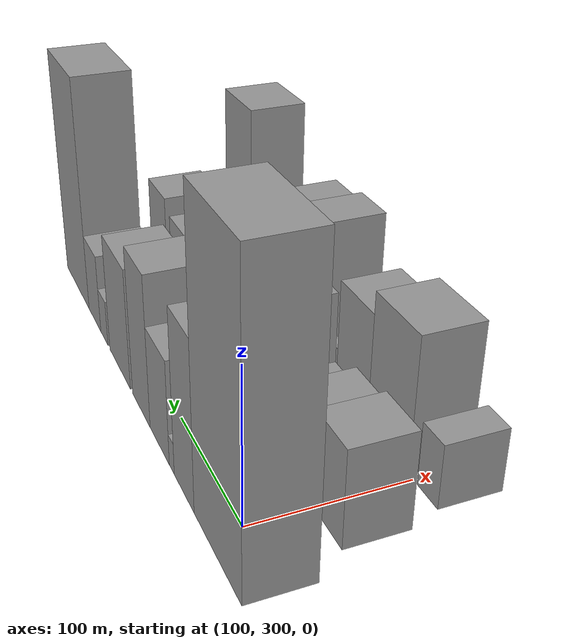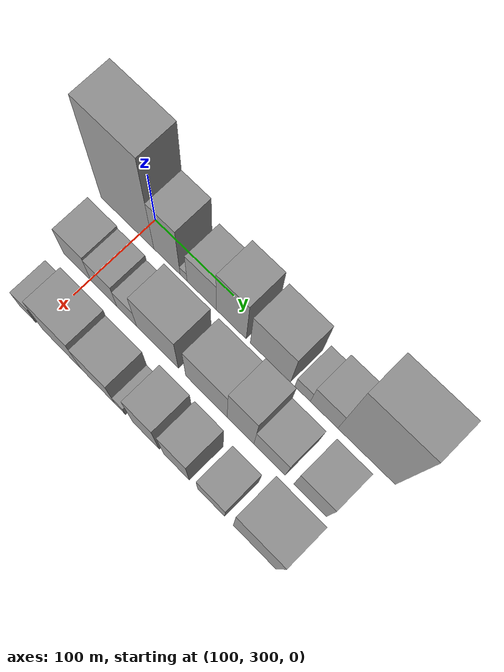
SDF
<sdf version="1.6">
 <world name="default">
  <model name="building_26">
   <static>1</static>
   <pose>100.0000 284.4919 0 0.000000 0.000000 0.000000</pose>
   <link name="link">
    <pose>0 0 96.00 0 0 0</pose>
    <collision name="collision"><geometry><box><size>40.0000 68.7816 192.0000</size></box></geometry></collision>
    <visual name="visual">
     <cast_shadows>0</cast_shadows>
     <geometry><box><size>40.0000 68.7816 192.0000</size></box></geometry>
     <material>
      <script>
       <uri>model://grey_wall/materials/scripts</uri>
       <uri>model://grey_wall/materials/textures</uri>
       <name>vrc/grey_wall</name>
      </script>
     </material>
    </visual>
   </link>
  </model>
  <model name="building_27">
   <static>1</static>
   <pose>100.0000 335.6351 0 0.000000 0.000000 0.000000</pose>
   <link name="link">
    <pose>0 0 54.00 0 0 0</pose>
    <collision name="collision"><geometry><box><size>40.0000 33.5049 108.0000</size></box></geometry></collision>
    <visual name="visual">
     <cast_shadows>0</cast_shadows>
     <geometry><box><size>40.0000 33.5049 108.0000</size></box></geometry>
     <material>
      <script>
       <uri>model://grey_wall/materials/scripts</uri>
       <uri>model://grey_wall/materials/textures</uri>
       <name>vrc/grey_wall</name>
      </script>
     </material>
    </visual>
   </link>
  </model>
  <model name="building_28">
   <static>1</static>
   <pose>100.0000 356.8194 0 0.000000 0.000000 0.000000</pose>
   <link name="link">
    <pose>0 0 10.50 0 0 0</pose>
    <collision name="collision"><geometry><box><size>40.0000 8.8637 21.0000</size></box></geometry></collision>
    <visual name="visual">
     <cast_shadows>0</cast_shadows>
     <geometry><box><size>40.0000 8.8637 21.0000</size></box></geometry>
     <material>
      <script>
       <uri>model://grey_wall/materials/scripts</uri>
       <uri>model://grey_wall/materials/textures</uri>
       <name>vrc/grey_wall</name>
      </script>
     </material>
    </visual>
   </link>
  </model>
  <model name="building_29">
   <static>1</static>
   <pose>100.0000 379.5728 0 0.000000 0.000000 0.000000</pose>
   <link name="link">
    <pose>0 0 34.50 0 0 0</pose>
    <collision name="collision"><geometry><box><size>40.0000 36.6431 69.0000</size></box></geometry></collision>
    <visual name="visual">
     <cast_shadows>0</cast_shadows>
     <geometry><box><size>40.0000 36.6431 69.0000</size></box></geometry>
     <material>
      <script>
       <uri>model://grey_wall/materials/scripts</uri>
       <uri>model://grey_wall/materials/textures</uri>
       <name>vrc/grey_wall</name>
      </script>
     </material>
    </visual>
   </link>
  </model>
  <model name="building_30">
   <static>1</static>
   <pose>100.0000 416.3446 0 0.000000 0.000000 0.000000</pose>
   <link name="link">
    <pose>0 0 51.00 0 0 0</pose>
    <collision name="collision"><geometry><box><size>40.0000 36.9004 102.0000</size></box></geometry></collision>
    <visual name="visual">
     <cast_shadows>0</cast_shadows>
     <geometry><box><size>40.0000 36.9004 102.0000</size></box></geometry>
     <material>
      <script>
       <uri>model://grey_wall/materials/scripts</uri>
       <uri>model://grey_wall/materials/textures</uri>
       <name>vrc/grey_wall</name>
      </script>
     </material>
    </visual>
   </link>
  </model>
  <model name="building_31">
   <static>1</static>
   <pose>100.0000 464.2166 0 0.000000 0.000000 0.000000</pose>
   <link name="link">
    <pose>0 0 42.00 0 0 0</pose>
    <collision name="collision"><geometry><box><size>40.0000 48.8437 84.0000</size></box></geometry></collision>
    <visual name="visual">
     <cast_shadows>0</cast_shadows>
     <geometry><box><size>40.0000 48.8437 84.0000</size></box></geometry>
     <material>
      <script>
       <uri>model://grey_wall/materials/scripts</uri>
       <uri>model://grey_wall/materials/textures</uri>
       <name>vrc/grey_wall</name>
      </script>
     </material>
    </visual>
   </link>
  </model>
  <model name="building_32">
   <static>1</static>
   <pose>100.0000 502.9277 0 0.000000 0.000000 0.000000</pose>
   <link name="link">
    <pose>0 0 16.50 0 0 0</pose>
    <collision name="collision"><geometry><box><size>40.0000 18.5784 33.0000</size></box></geometry></collision>
    <visual name="visual">
     <cast_shadows>0</cast_shadows>
     <geometry><box><size>40.0000 18.5784 33.0000</size></box></geometry>
     <material>
      <script>
       <uri>model://grey_wall/materials/scripts</uri>
       <uri>model://grey_wall/materials/textures</uri>
       <name>vrc/grey_wall</name>
      </script>
     </material>
    </visual>
   </link>
  </model>
  <model name="building_33">
   <static>1</static>
   <pose>100.0000 528.4617 0 0.000000 0.000000 0.000000</pose>
   <link name="link">
    <pose>0 0 28.50 0 0 0</pose>
    <collision name="collision"><geometry><box><size>40.0000 32.4897 57.0000</size></box></geometry></collision>
    <visual name="visual">
     <cast_shadows>0</cast_shadows>
     <geometry><box><size>40.0000 32.4897 57.0000</size></box></geometry>
     <material>
      <script>
       <uri>model://grey_wall/materials/scripts</uri>
       <uri>model://grey_wall/materials/textures</uri>
       <name>vrc/grey_wall</name>
      </script>
     </material>
    </visual>
   </link>
  </model>
  <model name="building_34">
   <static>1</static>
   <pose>100.0000 577.9212 0 0.000000 0.000000 0.000000</pose>
   <link name="link">
    <pose>0 0 84.00 0 0 0</pose>
    <collision name="collision"><geometry><box><size>40.0000 66.4292 168.0000</size></box></geometry></collision>
    <visual name="visual">
     <cast_shadows>0</cast_shadows>
     <geometry><box><size>40.0000 66.4292 168.0000</size></box></geometry>
     <material>
      <script>
       <uri>model://grey_wall/materials/scripts</uri>
       <uri>model://grey_wall/materials/textures</uri>
       <name>vrc/grey_wall</name>
      </script>
     </material>
    </visual>
   </link>
  </model>
  <model name="building_61">
   <static>1</static>
   <pose>160.0000 283.7693 0 0.000000 0.000000 0.000000</pose>
   <link name="link">
    <pose>0 0 31.50 0 0 0</pose>
    <collision name="collision"><geometry><box><size>40.0000 35.7438 63.0000</size></box></geometry></collision>
    <visual name="visual">
     <cast_shadows>0</cast_shadows>
     <geometry><box><size>40.0000 35.7438 63.0000</size></box></geometry>
     <material>
      <script>
       <uri>model://grey_wall/materials/scripts</uri>
       <uri>model://grey_wall/materials/textures</uri>
       <name>vrc/grey_wall</name>
      </script>
     </material>
    </visual>
   </link>
  </model>
  <model name="building_62">
   <static>1</static>
   <pose>160.0000 318.2773 0 0.000000 0.000000 0.000000</pose>
   <link name="link">
    <pose>0 0 28.50 0 0 0</pose>
    <collision name="collision"><geometry><box><size>40.0000 33.2721 57.0000</size></box></geometry></collision>
    <visual name="visual">
     <cast_shadows>0</cast_shadows>
     <geometry><box><size>40.0000 33.2721 57.0000</size></box></geometry>
     <material>
      <script>
       <uri>model://grey_wall/materials/scripts</uri>
       <uri>model://grey_wall/materials/textures</uri>
       <name>vrc/grey_wall</name>
      </script>
     </material>
    </visual>
   </link>
  </model>
  <model name="building_63">
   <static>1</static>
   <pose>160.0000 347.4708 0 0.000000 0.000000 0.000000</pose>
   <link name="link">
    <pose>0 0 22.50 0 0 0</pose>
    <collision name="collision"><geometry><box><size>40.0000 25.1149 45.0000</size></box></geometry></collision>
    <visual name="visual">
     <cast_shadows>0</cast_shadows>
     <geometry><box><size>40.0000 25.1149 45.0000</size></box></geometry>
     <material>
      <script>
       <uri>model://grey_wall/materials/scripts</uri>
       <uri>model://grey_wall/materials/textures</uri>
       <name>vrc/grey_wall</name>
      </script>
     </material>
    </visual>
   </link>
  </model>
  <model name="building_64">
   <static>1</static>
   <pose>160.0000 386.1329 0 0.000000 0.000000 0.000000</pose>
   <link name="link">
    <pose>0 0 45.00 0 0 0</pose>
    <collision name="collision"><geometry><box><size>40.0000 52.2093 90.0000</size></box></geometry></collision>
    <visual name="visual">
     <cast_shadows>0</cast_shadows>
     <geometry><box><size>40.0000 52.2093 90.0000</size></box></geometry>
     <material>
      <script>
       <uri>model://grey_wall/materials/scripts</uri>
       <uri>model://grey_wall/materials/textures</uri>
       <name>vrc/grey_wall</name>
      </script>
     </material>
    </visual>
   </link>
  </model>
  <model name="building_65">
   <static>1</static>
   <pose>160.0000 446.4780 0 0.000000 0.000000 0.000000</pose>
   <link name="link">
    <pose>0 0 43.50 0 0 0</pose>
    <collision name="collision"><geometry><box><size>40.0000 50.4809 87.0000</size></box></geometry></collision>
    <visual name="visual">
     <cast_shadows>0</cast_shadows>
     <geometry><box><size>40.0000 50.4809 87.0000</size></box></geometry>
     <material>
      <script>
       <uri>model://grey_wall/materials/scripts</uri>
       <uri>model://grey_wall/materials/textures</uri>
       <name>vrc/grey_wall</name>
      </script>
     </material>
    </visual>
   </link>
  </model>
  <model name="building_66">
   <static>1</static>
   <pose>160.0000 487.8027 0 0.000000 0.000000 0.000000</pose>
   <link name="link">
    <pose>0 0 52.50 0 0 0</pose>
    <collision name="collision"><geometry><box><size>40.0000 32.1684 105.0000</size></box></geometry></collision>
    <visual name="visual">
     <cast_shadows>0</cast_shadows>
     <geometry><box><size>40.0000 32.1684 105.0000</size></box></geometry>
     <material>
      <script>
       <uri>model://grey_wall/materials/scripts</uri>
       <uri>model://grey_wall/materials/textures</uri>
       <name>vrc/grey_wall</name>
      </script>
     </material>
    </visual>
   </link>
  </model>
  <model name="building_67">
   <static>1</static>
   <pose>160.0000 522.4254 0 0.000000 0.000000 0.000000</pose>
   <link name="link">
    <pose>0 0 31.50 0 0 0</pose>
    <collision name="collision"><geometry><box><size>40.0000 37.0770 63.0000</size></box></geometry></collision>
    <visual name="visual">
     <cast_shadows>0</cast_shadows>
     <geometry><box><size>40.0000 37.0770 63.0000</size></box></geometry>
     <material>
      <script>
       <uri>model://grey_wall/materials/scripts</uri>
       <uri>model://grey_wall/materials/textures</uri>
       <name>vrc/grey_wall</name>
      </script>
     </material>
    </visual>
   </link>
  </model>
  <model name="building_68">
   <static>1</static>
   <pose>160.0000 569.9293 0 0.000000 0.000000 0.000000</pose>
   <link name="link">
    <pose>0 0 36.00 0 0 0</pose>
    <collision name="collision"><geometry><box><size>40.0000 37.9309 72.0000</size></box></geometry></collision>
    <visual name="visual">
     <cast_shadows>0</cast_shadows>
     <geometry><box><size>40.0000 37.9309 72.0000</size></box></geometry>
     <material>
      <script>
       <uri>model://grey_wall/materials/scripts</uri>
       <uri>model://grey_wall/materials/textures</uri>
       <name>vrc/grey_wall</name>
      </script>
     </material>
    </visual>
   </link>
  </model>
  <model name="building_92">
   <static>1</static>
   <pose>220.0000 284.9764 0 0.000000 0.000000 0.000000</pose>
   <link name="link">
    <pose>0 0 21.00 0 0 0</pose>
    <collision name="collision"><geometry><box><size>40.0000 21.4844 42.0000</size></box></geometry></collision>
    <visual name="visual">
     <cast_shadows>0</cast_shadows>
     <geometry><box><size>40.0000 21.4844 42.0000</size></box></geometry>
     <material>
      <script>
       <uri>model://grey_wall/materials/scripts</uri>
       <uri>model://grey_wall/materials/textures</uri>
       <name>vrc/grey_wall</name>
      </script>
     </material>
    </visual>
   </link>
  </model>
  <model name="building_93">
   <static>1</static>
   <pose>220.0000 329.5134 0 0.000000 0.000000 0.000000</pose>
   <link name="link">
    <pose>0 0 45.00 0 0 0</pose>
    <collision name="collision"><geometry><box><size>40.0000 49.5895 90.0000</size></box></geometry></collision>
    <visual name="visual">
     <cast_shadows>0</cast_shadows>
     <geometry><box><size>40.0000 49.5895 90.0000</size></box></geometry>
     <material>
      <script>
       <uri>model://grey_wall/materials/scripts</uri>
       <uri>model://grey_wall/materials/textures</uri>
       <name>vrc/grey_wall</name>
      </script>
     </material>
    </visual>
   </link>
  </model>
  <model name="building_94">
   <static>1</static>
   <pose>220.0000 375.3095 0 0.000000 0.000000 0.000000</pose>
   <link name="link">
    <pose>0 0 37.50 0 0 0</pose>
    <collision name="collision"><geometry><box><size>40.0000 42.0028 75.0000</size></box></geometry></collision>
    <visual name="visual">
     <cast_shadows>0</cast_shadows>
     <geometry><box><size>40.0000 42.0028 75.0000</size></box></geometry>
     <material>
      <script>
       <uri>model://grey_wall/materials/scripts</uri>
       <uri>model://grey_wall/materials/textures</uri>
       <name>vrc/grey_wall</name>
      </script>
     </material>
    </visual>
   </link>
  </model>
  <model name="building_95">
   <static>1</static>
   <pose>220.0000 402.9028 0 0.000000 0.000000 0.000000</pose>
   <link name="link">
    <pose>0 0 13.50 0 0 0</pose>
    <collision name="collision"><geometry><box><size>40.0000 13.1837 27.0000</size></box></geometry></collision>
    <visual name="visual">
     <cast_shadows>0</cast_shadows>
     <geometry><box><size>40.0000 13.1837 27.0000</size></box></geometry>
     <material>
      <script>
       <uri>model://grey_wall/materials/scripts</uri>
       <uri>model://grey_wall/materials/textures</uri>
       <name>vrc/grey_wall</name>
      </script>
     </material>
    </visual>
   </link>
  </model>
  <model name="building_96">
   <static>1</static>
   <pose>220.0000 434.7959 0 0.000000 0.000000 0.000000</pose>
   <link name="link">
    <pose>0 0 51.00 0 0 0</pose>
    <collision name="collision"><geometry><box><size>40.0000 32.6025 102.0000</size></box></geometry></collision>
    <visual name="visual">
     <cast_shadows>0</cast_shadows>
     <geometry><box><size>40.0000 32.6025 102.0000</size></box></geometry>
     <material>
      <script>
       <uri>model://grey_wall/materials/scripts</uri>
       <uri>model://grey_wall/materials/textures</uri>
       <name>vrc/grey_wall</name>
      </script>
     </material>
    </visual>
   </link>
  </model>
  <model name="building_97">
   <static>1</static>
   <pose>220.0000 471.7259 0 0.000000 0.000000 0.000000</pose>
   <link name="link">
    <pose>0 0 48.00 0 0 0</pose>
    <collision name="collision"><geometry><box><size>40.0000 31.2575 96.0000</size></box></geometry></collision>
    <visual name="visual">
     <cast_shadows>0</cast_shadows>
     <geometry><box><size>40.0000 31.2575 96.0000</size></box></geometry>
     <material>
      <script>
       <uri>model://grey_wall/materials/scripts</uri>
       <uri>model://grey_wall/materials/textures</uri>
       <name>vrc/grey_wall</name>
      </script>
     </material>
    </visual>
   </link>
  </model>
  <model name="building_98">
   <static>1</static>
   <pose>220.0000 513.3874 0 0.000000 0.000000 0.000000</pose>
   <link name="link">
    <pose>0 0 31.50 0 0 0</pose>
    <collision name="collision"><geometry><box><size>40.0000 32.0655 63.0000</size></box></geometry></collision>
    <visual name="visual">
     <cast_shadows>0</cast_shadows>
     <geometry><box><size>40.0000 32.0655 63.0000</size></box></geometry>
     <material>
      <script>
       <uri>model://grey_wall/materials/scripts</uri>
       <uri>model://grey_wall/materials/textures</uri>
       <name>vrc/grey_wall</name>
      </script>
     </material>
    </visual>
   </link>
  </model>
  <model name="building_99">
   <static>1</static>
   <pose>220.0000 564.1428 0 0.000000 0.000000 0.000000</pose>
   <link name="link">
    <pose>0 0 66.00 0 0 0</pose>
    <collision name="collision"><geometry><box><size>40.0000 49.4452 132.0000</size></box></geometry></collision>
    <visual name="visual">
     <cast_shadows>0</cast_shadows>
     <geometry><box><size>40.0000 49.4452 132.0000</size></box></geometry>
     <material>
      <script>
       <uri>model://grey_wall/materials/scripts</uri>
       <uri>model://grey_wall/materials/textures</uri>
       <name>vrc/grey_wall</name>
      </script>
     </material>
    </visual>
   </link>
  </model>
 </world>
</sdf>
